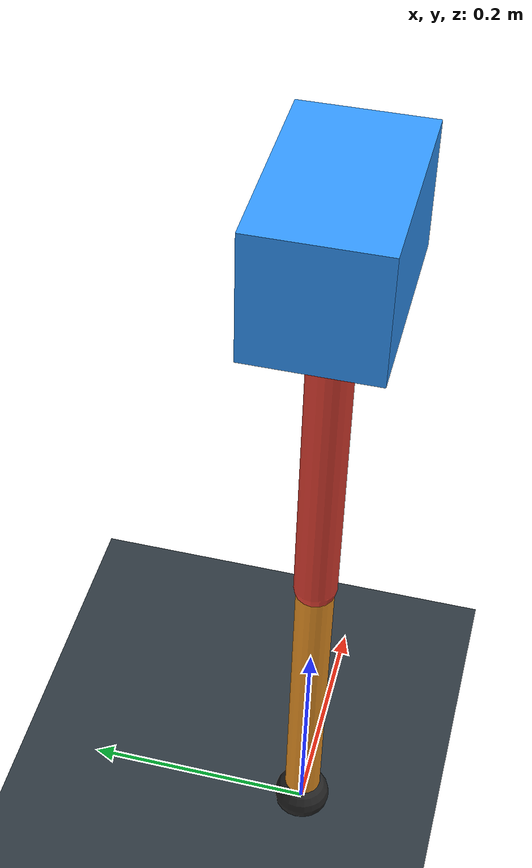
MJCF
<mujoco model="single_axis_two_bar">
  <compiler angle="radian" inertiafromgeom="true"/>
  <option timestep="0.001" integrator="implicitfast" gravity="0 0 -9.81"/>
  <default>
    <joint damping="0.08"/>
    <geom friction="1.2 0.01 0.0001" condim="3"/>
  </default>
  <worldbody>
    <geom name="floor" type="plane" size="5 5 0.1" rgba="0.18 0.22 0.25 1"/>
    <body name="carriage" pos="0 0 0.6250726835458488">
      <joint name="pole_slide" type="slide" axis="0 0 1"/>
      <geom name="payload" type="box" size="0.08 0.05 0.05" mass="2.1060723761189926" rgba="0.2 0.6 1 1"/>
      <body name="thigh" pos="0 0 0">
        <joint name="hip" type="hinge" axis="0 1 0"/>
        <geom name="thigh_link" type="capsule" fromto="0 0 0 0 0 -0.33482662022692383" size="0.018" mass="0.23856839125511695" rgba="0.9 0.25 0.2 1"/>
        <body name="shank" pos="0 0 -0.33482662022692383">
          <joint name="knee" type="hinge" axis="0 1 0"/>
          <geom name="shank_link" type="capsule" fromto="0 0 0 0 0 -0.2838050122945697" size="0.016" mass="0.20221482141224859" rgba="0.95 0.6 0.15 1"/>
          <geom name="foot" type="sphere" pos="0 0 -0.2838050122945697" size="0.025" mass="0.03" rgba="0.15 0.15 0.15 1"/>
          <site name="toe" pos="0 0 -0.2838050122945697" size="0.008"/>
        </body>
      </body>
    </body>
  </worldbody>
  <actuator>
    <motor name="hip_motor" joint="hip" ctrlrange="-13.40425000886057 13.40425000886057"/>
    <motor name="knee_motor" joint="knee" ctrlrange="-50.57171961820855 50.57171961820855"/>
  </actuator>
</mujoco>
